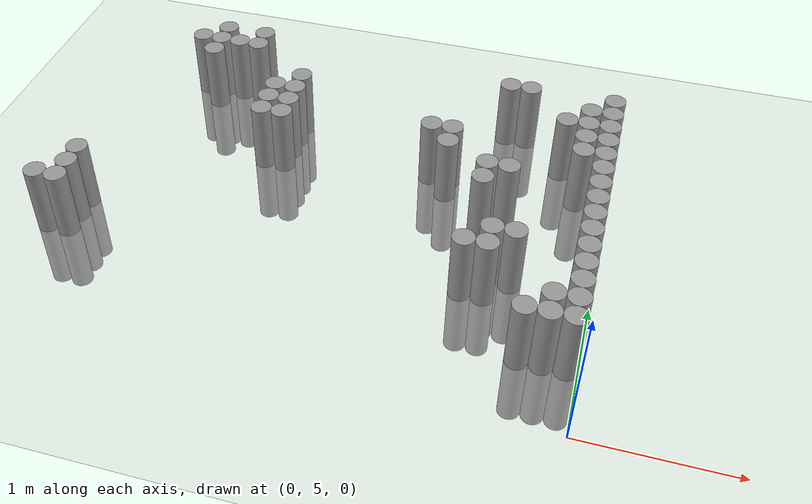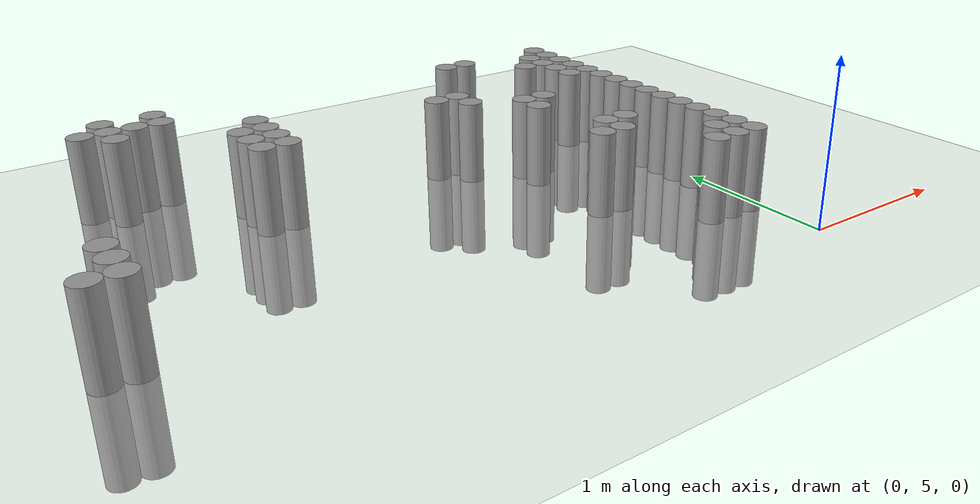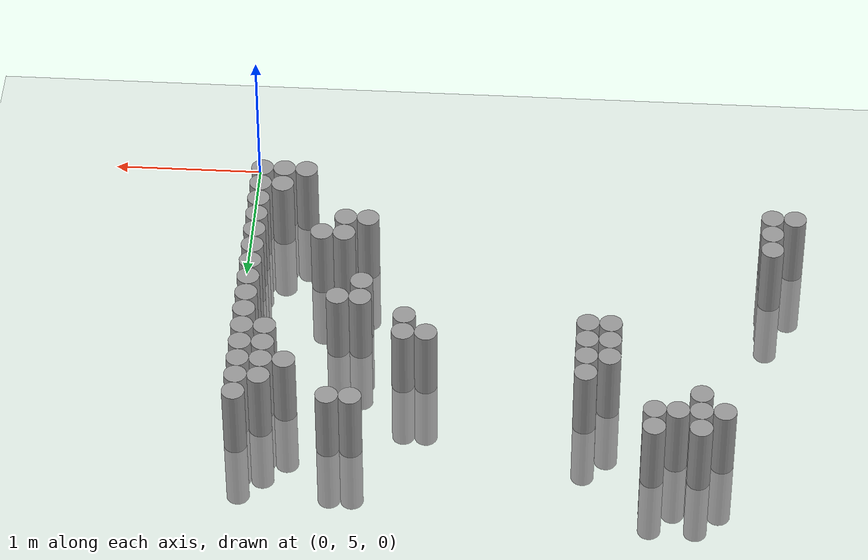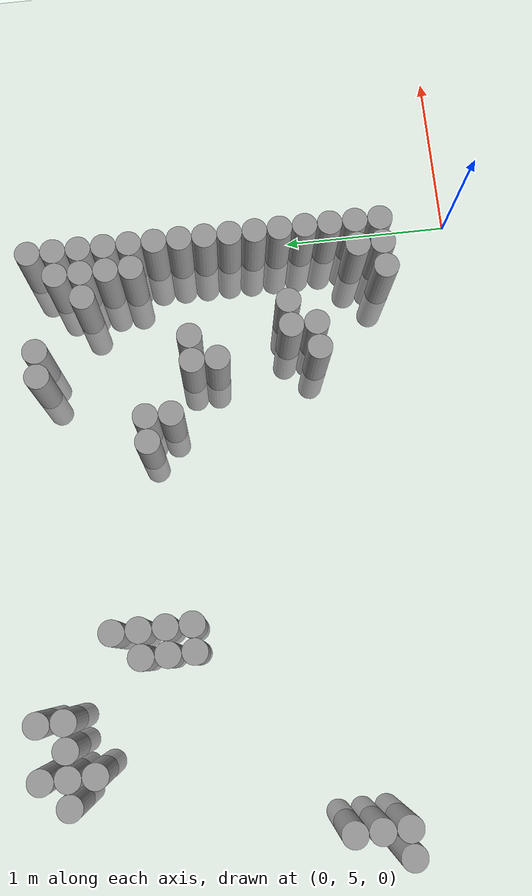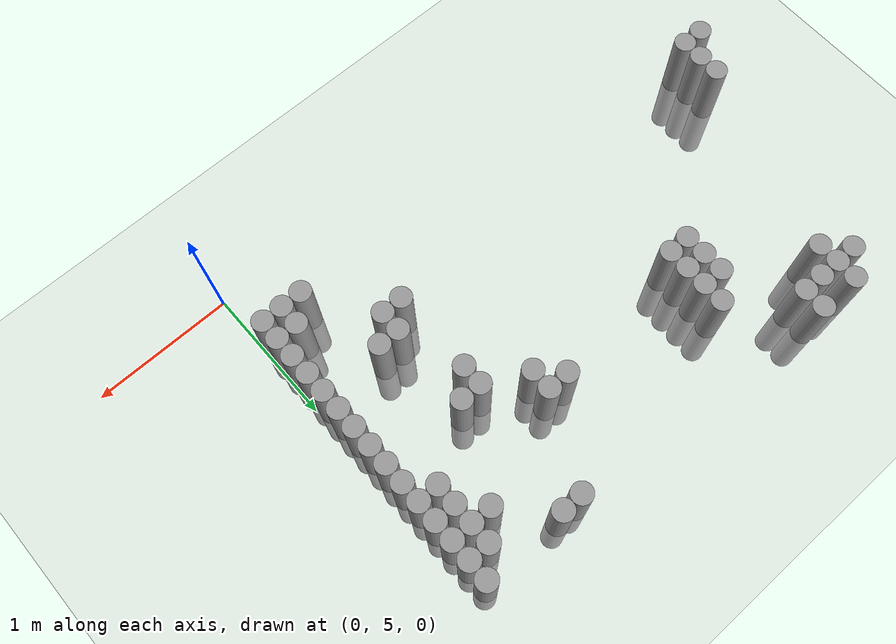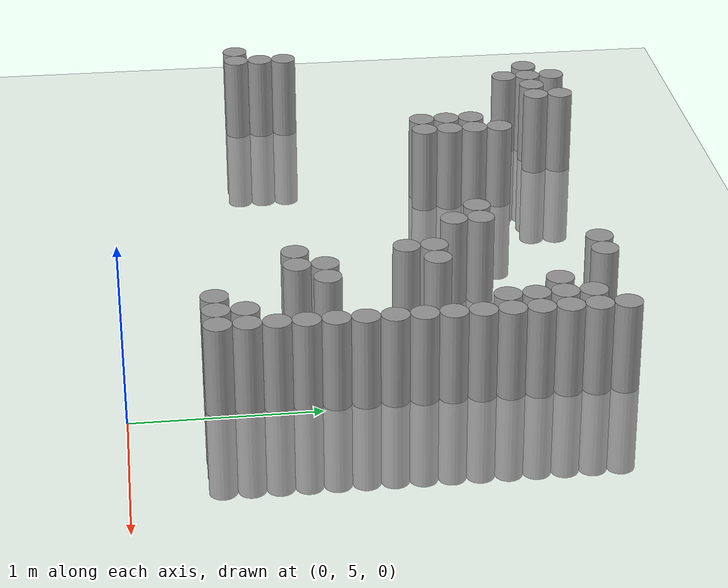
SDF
<sdf version="1.6">
 <world name="default">
  <model name="ground_plane">
   <static>1</static>
   <link name="link">
    <collision name="collision">
     <geometry><plane><normal>0 0 1</normal><size>100 100</size></plane></geometry>
     <surface><friction><ode><mu>100</mu><mu2>50</mu2></ode></friction></surface>
    </collision>
    <visual name="visual">
     <cast_shadows>0</cast_shadows>
     <geometry><plane><normal>0 0 1</normal><size>100 100</size></plane></geometry>
     <material>
      <script><uri>file://media/materials/scripts/gazebo.material</uri><name>Gazebo/Grey</name></script>
     </material>
    </visual>
   </link>
  </model>
  <model name="unit_cylinder_158">
   <pose>-3.675000 5.775000 0.000000 0.000000 0.000000 0.000000</pose>
   <link name="link">
    <inertial>
     <mass>1</mass>
     <inertia><ixx>0.145833</ixx><ixy>0</ixy><ixz>0</ixz><iyy>0.145833</iyy><iyz>0</iyz><izz>0.125</izz></inertia>
    </inertial>
    <collision name="collision">
     <geometry><cylinder><radius>0.075000</radius><length>1</length></cylinder></geometry>
    </collision>
    <visual name="visual">
     <geometry><cylinder><radius>0.075000</radius><length>1</length></cylinder></geometry>
     <material>
      <script><name>Gazebo/Grey</name><uri>file://media/materials/scripts/gazebo.material</uri></script>
     </material>
    </visual>
   </link>
  </model>
  <model name="unit_cylinder_163">
   <pose>-3.525000 5.775000 0.000000 0.000000 0.000000 0.000000</pose>
   <link name="link">
    <inertial>
     <mass>1</mass>
     <inertia><ixx>0.145833</ixx><ixy>0</ixy><ixz>0</ixz><iyy>0.145833</iyy><iyz>0</iyz><izz>0.125</izz></inertia>
    </inertial>
    <collision name="collision">
     <geometry><cylinder><radius>0.075000</radius><length>1</length></cylinder></geometry>
    </collision>
    <visual name="visual">
     <geometry><cylinder><radius>0.075000</radius><length>1</length></cylinder></geometry>
     <material>
      <script><name>Gazebo/Grey</name><uri>file://media/materials/scripts/gazebo.material</uri></script>
     </material>
    </visual>
   </link>
  </model>
  <model name="unit_cylinder_164">
   <pose>-3.525000 5.925000 0.000000 0.000000 0.000000 0.000000</pose>
   <link name="link">
    <inertial>
     <mass>1</mass>
     <inertia><ixx>0.145833</ixx><ixy>0</ixy><ixz>0</ixz><iyy>0.145833</iyy><iyz>0</iyz><izz>0.125</izz></inertia>
    </inertial>
    <collision name="collision">
     <geometry><cylinder><radius>0.075000</radius><length>1</length></cylinder></geometry>
    </collision>
    <visual name="visual">
     <geometry><cylinder><radius>0.075000</radius><length>1</length></cylinder></geometry>
     <material>
      <script><name>Gazebo/Grey</name><uri>file://media/materials/scripts/gazebo.material</uri></script>
     </material>
    </visual>
   </link>
  </model>
  <model name="unit_cylinder_165">
   <pose>-3.525000 6.075000 0.000000 0.000000 0.000000 0.000000</pose>
   <link name="link">
    <inertial>
     <mass>1</mass>
     <inertia><ixx>0.145833</ixx><ixy>0</ixy><ixz>0</ixz><iyy>0.145833</iyy><iyz>0</iyz><izz>0.125</izz></inertia>
    </inertial>
    <collision name="collision">
     <geometry><cylinder><radius>0.075000</radius><length>1</length></cylinder></geometry>
    </collision>
    <visual name="visual">
     <geometry><cylinder><radius>0.075000</radius><length>1</length></cylinder></geometry>
     <material>
      <script><name>Gazebo/Grey</name><uri>file://media/materials/scripts/gazebo.material</uri></script>
     </material>
    </visual>
   </link>
  </model>
  <model name="unit_cylinder_168">
   <pose>-3.225000 7.575000 0.000000 0.000000 0.000000 0.000000</pose>
   <link name="link">
    <inertial>
     <mass>1</mass>
     <inertia><ixx>0.145833</ixx><ixy>0</ixy><ixz>0</ixz><iyy>0.145833</iyy><iyz>0</iyz><izz>0.125</izz></inertia>
    </inertial>
    <collision name="collision">
     <geometry><cylinder><radius>0.075000</radius><length>1</length></cylinder></geometry>
    </collision>
    <visual name="visual">
     <geometry><cylinder><radius>0.075000</radius><length>1</length></cylinder></geometry>
     <material>
      <script><name>Gazebo/Grey</name><uri>file://media/materials/scripts/gazebo.material</uri></script>
     </material>
    </visual>
   </link>
  </model>
  <model name="unit_cylinder_171">
   <pose>-3.075000 7.425000 0.000000 0.000000 0.000000 0.000000</pose>
   <link name="link">
    <inertial>
     <mass>1</mass>
     <inertia><ixx>0.145833</ixx><ixy>0</ixy><ixz>0</ixz><iyy>0.145833</iyy><iyz>0</iyz><izz>0.125</izz></inertia>
    </inertial>
    <collision name="collision">
     <geometry><cylinder><radius>0.075000</radius><length>1</length></cylinder></geometry>
    </collision>
    <visual name="visual">
     <geometry><cylinder><radius>0.075000</radius><length>1</length></cylinder></geometry>
     <material>
      <script><name>Gazebo/Grey</name><uri>file://media/materials/scripts/gazebo.material</uri></script>
     </material>
    </visual>
   </link>
  </model>
  <model name="unit_cylinder_172">
   <pose>-3.075000 7.575000 0.000000 0.000000 0.000000 0.000000</pose>
   <link name="link">
    <inertial>
     <mass>1</mass>
     <inertia><ixx>0.145833</ixx><ixy>0</ixy><ixz>0</ixz><iyy>0.145833</iyy><iyz>0</iyz><izz>0.125</izz></inertia>
    </inertial>
    <collision name="collision">
     <geometry><cylinder><radius>0.075000</radius><length>1</length></cylinder></geometry>
    </collision>
    <visual name="visual">
     <geometry><cylinder><radius>0.075000</radius><length>1</length></cylinder></geometry>
     <material>
      <script><name>Gazebo/Grey</name><uri>file://media/materials/scripts/gazebo.material</uri></script>
     </material>
    </visual>
   </link>
  </model>
  <model name="unit_cylinder_173">
   <pose>-3.075000 7.725000 0.000000 0.000000 0.000000 0.000000</pose>
   <link name="link">
    <inertial>
     <mass>1</mass>
     <inertia><ixx>0.145833</ixx><ixy>0</ixy><ixz>0</ixz><iyy>0.145833</iyy><iyz>0</iyz><izz>0.125</izz></inertia>
    </inertial>
    <collision name="collision">
     <geometry><cylinder><radius>0.075000</radius><length>1</length></cylinder></geometry>
    </collision>
    <visual name="visual">
     <geometry><cylinder><radius>0.075000</radius><length>1</length></cylinder></geometry>
     <material>
      <script><name>Gazebo/Grey</name><uri>file://media/materials/scripts/gazebo.material</uri></script>
     </material>
    </visual>
   </link>
  </model>
  <model name="unit_cylinder_177">
   <pose>-2.925000 7.575000 0.000000 0.000000 0.000000 0.000000</pose>
   <link name="link">
    <inertial>
     <mass>1</mass>
     <inertia><ixx>0.145833</ixx><ixy>0</ixy><ixz>0</ixz><iyy>0.145833</iyy><iyz>0</iyz><izz>0.125</izz></inertia>
    </inertial>
    <collision name="collision">
     <geometry><cylinder><radius>0.075000</radius><length>1</length></cylinder></geometry>
    </collision>
    <visual name="visual">
     <geometry><cylinder><radius>0.075000</radius><length>1</length></cylinder></geometry>
     <material>
      <script><name>Gazebo/Grey</name><uri>file://media/materials/scripts/gazebo.material</uri></script>
     </material>
    </visual>
   </link>
  </model>
  <model name="unit_cylinder_182">
   <pose>-2.775000 7.575000 0.000000 0.000000 0.000000 0.000000</pose>
   <link name="link">
    <inertial>
     <mass>1</mass>
     <inertia><ixx>0.145833</ixx><ixy>0</ixy><ixz>0</ixz><iyy>0.145833</iyy><iyz>0</iyz><izz>0.125</izz></inertia>
    </inertial>
    <collision name="collision">
     <geometry><cylinder><radius>0.075000</radius><length>1</length></cylinder></geometry>
    </collision>
    <visual name="visual">
     <geometry><cylinder><radius>0.075000</radius><length>1</length></cylinder></geometry>
     <material>
      <script><name>Gazebo/Grey</name><uri>file://media/materials/scripts/gazebo.material</uri></script>
     </material>
    </visual>
   </link>
  </model>
  <model name="unit_cylinder_183">
   <pose>-2.775000 7.725000 0.000000 0.000000 0.000000 0.000000</pose>
   <link name="link">
    <inertial>
     <mass>1</mass>
     <inertia><ixx>0.145833</ixx><ixy>0</ixy><ixz>0</ixz><iyy>0.145833</iyy><iyz>0</iyz><izz>0.125</izz></inertia>
    </inertial>
    <collision name="collision">
     <geometry><cylinder><radius>0.075000</radius><length>1</length></cylinder></geometry>
    </collision>
    <visual name="visual">
     <geometry><cylinder><radius>0.075000</radius><length>1</length></cylinder></geometry>
     <material>
      <script><name>Gazebo/Grey</name><uri>file://media/materials/scripts/gazebo.material</uri></script>
     </material>
    </visual>
   </link>
  </model>
  <model name="unit_cylinder_187">
   <pose>-2.475000 6.825000 0.000000 0.000000 0.000000 0.000000</pose>
   <link name="link">
    <inertial>
     <mass>1</mass>
     <inertia><ixx>0.145833</ixx><ixy>0</ixy><ixz>0</ixz><iyy>0.145833</iyy><iyz>0</iyz><izz>0.125</izz></inertia>
    </inertial>
    <collision name="collision">
     <geometry><cylinder><radius>0.075000</radius><length>1</length></cylinder></geometry>
    </collision>
    <visual name="visual">
     <geometry><cylinder><radius>0.075000</radius><length>1</length></cylinder></geometry>
     <material>
      <script><name>Gazebo/Grey</name><uri>file://media/materials/scripts/gazebo.material</uri></script>
     </material>
    </visual>
   </link>
  </model>
  <model name="unit_cylinder_188">
   <pose>-2.475000 6.975000 0.000000 0.000000 0.000000 0.000000</pose>
   <link name="link">
    <inertial>
     <mass>1</mass>
     <inertia><ixx>0.145833</ixx><ixy>0</ixy><ixz>0</ixz><iyy>0.145833</iyy><iyz>0</iyz><izz>0.125</izz></inertia>
    </inertial>
    <collision name="collision">
     <geometry><cylinder><radius>0.075000</radius><length>1</length></cylinder></geometry>
    </collision>
    <visual name="visual">
     <geometry><cylinder><radius>0.075000</radius><length>1</length></cylinder></geometry>
     <material>
      <script><name>Gazebo/Grey</name><uri>file://media/materials/scripts/gazebo.material</uri></script>
     </material>
    </visual>
   </link>
  </model>
  <model name="unit_cylinder_189">
   <pose>-2.475000 7.125000 0.000000 0.000000 0.000000 0.000000</pose>
   <link name="link">
    <inertial>
     <mass>1</mass>
     <inertia><ixx>0.145833</ixx><ixy>0</ixy><ixz>0</ixz><iyy>0.145833</iyy><iyz>0</iyz><izz>0.125</izz></inertia>
    </inertial>
    <collision name="collision">
     <geometry><cylinder><radius>0.075000</radius><length>1</length></cylinder></geometry>
    </collision>
    <visual name="visual">
     <geometry><cylinder><radius>0.075000</radius><length>1</length></cylinder></geometry>
     <material>
      <script><name>Gazebo/Grey</name><uri>file://media/materials/scripts/gazebo.material</uri></script>
     </material>
    </visual>
   </link>
  </model>
  <model name="unit_cylinder_190">
   <pose>-2.325000 6.825000 0.000000 0.000000 0.000000 0.000000</pose>
   <link name="link">
    <inertial>
     <mass>1</mass>
     <inertia><ixx>0.145833</ixx><ixy>0</ixy><ixz>0</ixz><iyy>0.145833</iyy><iyz>0</iyz><izz>0.125</izz></inertia>
    </inertial>
    <collision name="collision">
     <geometry><cylinder><radius>0.075000</radius><length>1</length></cylinder></geometry>
    </collision>
    <visual name="visual">
     <geometry><cylinder><radius>0.075000</radius><length>1</length></cylinder></geometry>
     <material>
      <script><name>Gazebo/Grey</name><uri>file://media/materials/scripts/gazebo.material</uri></script>
     </material>
    </visual>
   </link>
  </model>
  <model name="unit_cylinder_191">
   <pose>-2.325000 6.975000 0.000000 0.000000 0.000000 0.000000</pose>
   <link name="link">
    <inertial>
     <mass>1</mass>
     <inertia><ixx>0.145833</ixx><ixy>0</ixy><ixz>0</ixz><iyy>0.145833</iyy><iyz>0</iyz><izz>0.125</izz></inertia>
    </inertial>
    <collision name="collision">
     <geometry><cylinder><radius>0.075000</radius><length>1</length></cylinder></geometry>
    </collision>
    <visual name="visual">
     <geometry><cylinder><radius>0.075000</radius><length>1</length></cylinder></geometry>
     <material>
      <script><name>Gazebo/Grey</name><uri>file://media/materials/scripts/gazebo.material</uri></script>
     </material>
    </visual>
   </link>
  </model>
  <model name="unit_cylinder_192">
   <pose>-2.325000 7.125000 0.000000 0.000000 0.000000 0.000000</pose>
   <link name="link">
    <inertial>
     <mass>1</mass>
     <inertia><ixx>0.145833</ixx><ixy>0</ixy><ixz>0</ixz><iyy>0.145833</iyy><iyz>0</iyz><izz>0.125</izz></inertia>
    </inertial>
    <collision name="collision">
     <geometry><cylinder><radius>0.075000</radius><length>1</length></cylinder></geometry>
    </collision>
    <visual name="visual">
     <geometry><cylinder><radius>0.075000</radius><length>1</length></cylinder></geometry>
     <material>
      <script><name>Gazebo/Grey</name><uri>file://media/materials/scripts/gazebo.material</uri></script>
     </material>
    </visual>
   </link>
  </model>
  <model name="unit_cylinder_193">
   <pose>-2.325000 7.275000 0.000000 0.000000 0.000000 0.000000</pose>
   <link name="link">
    <inertial>
     <mass>1</mass>
     <inertia><ixx>0.145833</ixx><ixy>0</ixy><ixz>0</ixz><iyy>0.145833</iyy><iyz>0</iyz><izz>0.125</izz></inertia>
    </inertial>
    <collision name="collision">
     <geometry><cylinder><radius>0.075000</radius><length>1</length></cylinder></geometry>
    </collision>
    <visual name="visual">
     <geometry><cylinder><radius>0.075000</radius><length>1</length></cylinder></geometry>
     <material>
      <script><name>Gazebo/Grey</name><uri>file://media/materials/scripts/gazebo.material</uri></script>
     </material>
    </visual>
   </link>
  </model>
  <model name="unit_cylinder_203">
   <pose>-1.275000 6.975000 0.000000 0.000000 0.000000 0.000000</pose>
   <link name="link">
    <inertial>
     <mass>1</mass>
     <inertia><ixx>0.145833</ixx><ixy>0</ixy><ixz>0</ixz><iyy>0.145833</iyy><iyz>0</iyz><izz>0.125</izz></inertia>
    </inertial>
    <collision name="collision">
     <geometry><cylinder><radius>0.075000</radius><length>1</length></cylinder></geometry>
    </collision>
    <visual name="visual">
     <geometry><cylinder><radius>0.075000</radius><length>1</length></cylinder></geometry>
     <material>
      <script><name>Gazebo/Grey</name><uri>file://media/materials/scripts/gazebo.material</uri></script>
     </material>
    </visual>
   </link>
  </model>
  <model name="unit_cylinder_204">
   <pose>-1.125000 6.825000 0.000000 0.000000 0.000000 0.000000</pose>
   <link name="link">
    <inertial>
     <mass>1</mass>
     <inertia><ixx>0.145833</ixx><ixy>0</ixy><ixz>0</ixz><iyy>0.145833</iyy><iyz>0</iyz><izz>0.125</izz></inertia>
    </inertial>
    <collision name="collision">
     <geometry><cylinder><radius>0.075000</radius><length>1</length></cylinder></geometry>
    </collision>
    <visual name="visual">
     <geometry><cylinder><radius>0.075000</radius><length>1</length></cylinder></geometry>
     <material>
      <script><name>Gazebo/Grey</name><uri>file://media/materials/scripts/gazebo.material</uri></script>
     </material>
    </visual>
   </link>
  </model>
  <model name="unit_cylinder_205">
   <pose>-1.125000 6.975000 0.000000 0.000000 0.000000 0.000000</pose>
   <link name="link">
    <inertial>
     <mass>1</mass>
     <inertia><ixx>0.145833</ixx><ixy>0</ixy><ixz>0</ixz><iyy>0.145833</iyy><iyz>0</iyz><izz>0.125</izz></inertia>
    </inertial>
    <collision name="collision">
     <geometry><cylinder><radius>0.075000</radius><length>1</length></cylinder></geometry>
    </collision>
    <visual name="visual">
     <geometry><cylinder><radius>0.075000</radius><length>1</length></cylinder></geometry>
     <material>
      <script><name>Gazebo/Grey</name><uri>file://media/materials/scripts/gazebo.material</uri></script>
     </material>
    </visual>
   </link>
  </model>
  <model name="unit_cylinder_206">
   <pose>-0.825000 5.925000 0.000000 0.000000 0.000000 0.000000</pose>
   <link name="link">
    <inertial>
     <mass>1</mass>
     <inertia><ixx>0.145833</ixx><ixy>0</ixy><ixz>0</ixz><iyy>0.145833</iyy><iyz>0</iyz><izz>0.125</izz></inertia>
    </inertial>
    <collision name="collision">
     <geometry><cylinder><radius>0.075000</radius><length>1</length></cylinder></geometry>
    </collision>
    <visual name="visual">
     <geometry><cylinder><radius>0.075000</radius><length>1</length></cylinder></geometry>
     <material>
      <script><name>Gazebo/Grey</name><uri>file://media/materials/scripts/gazebo.material</uri></script>
     </material>
    </visual>
   </link>
  </model>
  <model name="unit_cylinder_207">
   <pose>-0.825000 6.525000 0.000000 0.000000 0.000000 0.000000</pose>
   <link name="link">
    <inertial>
     <mass>1</mass>
     <inertia><ixx>0.145833</ixx><ixy>0</ixy><ixz>0</ixz><iyy>0.145833</iyy><iyz>0</iyz><izz>0.125</izz></inertia>
    </inertial>
    <collision name="collision">
     <geometry><cylinder><radius>0.075000</radius><length>1</length></cylinder></geometry>
    </collision>
    <visual name="visual">
     <geometry><cylinder><radius>0.075000</radius><length>1</length></cylinder></geometry>
     <material>
      <script><name>Gazebo/Grey</name><uri>file://media/materials/scripts/gazebo.material</uri></script>
     </material>
    </visual>
   </link>
  </model>
  <model name="unit_cylinder_208">
   <pose>-0.825000 6.675000 0.000000 0.000000 0.000000 0.000000</pose>
   <link name="link">
    <inertial>
     <mass>1</mass>
     <inertia><ixx>0.145833</ixx><ixy>0</ixy><ixz>0</ixz><iyy>0.145833</iyy><iyz>0</iyz><izz>0.125</izz></inertia>
    </inertial>
    <collision name="collision">
     <geometry><cylinder><radius>0.075000</radius><length>1</length></cylinder></geometry>
    </collision>
    <visual name="visual">
     <geometry><cylinder><radius>0.075000</radius><length>1</length></cylinder></geometry>
     <material>
      <script><name>Gazebo/Grey</name><uri>file://media/materials/scripts/gazebo.material</uri></script>
     </material>
    </visual>
   </link>
  </model>
  <model name="unit_cylinder_209">
   <pose>-0.825000 7.575000 0.000000 0.000000 0.000000 0.000000</pose>
   <link name="link">
    <inertial>
     <mass>1</mass>
     <inertia><ixx>0.145833</ixx><ixy>0</ixy><ixz>0</ixz><iyy>0.145833</iyy><iyz>0</iyz><izz>0.125</izz></inertia>
    </inertial>
    <collision name="collision">
     <geometry><cylinder><radius>0.075000</radius><length>1</length></cylinder></geometry>
    </collision>
    <visual name="visual">
     <geometry><cylinder><radius>0.075000</radius><length>1</length></cylinder></geometry>
     <material>
      <script><name>Gazebo/Grey</name><uri>file://media/materials/scripts/gazebo.material</uri></script>
     </material>
    </visual>
   </link>
  </model>
  <model name="unit_cylinder_210">
   <pose>-0.675000 5.925000 0.000000 0.000000 0.000000 0.000000</pose>
   <link name="link">
    <inertial>
     <mass>1</mass>
     <inertia><ixx>0.145833</ixx><ixy>0</ixy><ixz>0</ixz><iyy>0.145833</iyy><iyz>0</iyz><izz>0.125</izz></inertia>
    </inertial>
    <collision name="collision">
     <geometry><cylinder><radius>0.075000</radius><length>1</length></cylinder></geometry>
    </collision>
    <visual name="visual">
     <geometry><cylinder><radius>0.075000</radius><length>1</length></cylinder></geometry>
     <material>
      <script><name>Gazebo/Grey</name><uri>file://media/materials/scripts/gazebo.material</uri></script>
     </material>
    </visual>
   </link>
  </model>
  <model name="unit_cylinder_211">
   <pose>-0.675000 6.075000 0.000000 0.000000 0.000000 0.000000</pose>
   <link name="link">
    <inertial>
     <mass>1</mass>
     <inertia><ixx>0.145833</ixx><ixy>0</ixy><ixz>0</ixz><iyy>0.145833</iyy><iyz>0</iyz><izz>0.125</izz></inertia>
    </inertial>
    <collision name="collision">
     <geometry><cylinder><radius>0.075000</radius><length>1</length></cylinder></geometry>
    </collision>
    <visual name="visual">
     <geometry><cylinder><radius>0.075000</radius><length>1</length></cylinder></geometry>
     <material>
      <script><name>Gazebo/Grey</name><uri>file://media/materials/scripts/gazebo.material</uri></script>
     </material>
    </visual>
   </link>
  </model>
  <model name="unit_cylinder_212">
   <pose>-0.675000 6.675000 0.000000 0.000000 0.000000 0.000000</pose>
   <link name="link">
    <inertial>
     <mass>1</mass>
     <inertia><ixx>0.145833</ixx><ixy>0</ixy><ixz>0</ixz><iyy>0.145833</iyy><iyz>0</iyz><izz>0.125</izz></inertia>
    </inertial>
    <collision name="collision">
     <geometry><cylinder><radius>0.075000</radius><length>1</length></cylinder></geometry>
    </collision>
    <visual name="visual">
     <geometry><cylinder><radius>0.075000</radius><length>1</length></cylinder></geometry>
     <material>
      <script><name>Gazebo/Grey</name><uri>file://media/materials/scripts/gazebo.material</uri></script>
     </material>
    </visual>
   </link>
  </model>
  <model name="unit_cylinder_213">
   <pose>-0.675000 7.575000 0.000000 0.000000 0.000000 0.000000</pose>
   <link name="link">
    <inertial>
     <mass>1</mass>
     <inertia><ixx>0.145833</ixx><ixy>0</ixy><ixz>0</ixz><iyy>0.145833</iyy><iyz>0</iyz><izz>0.125</izz></inertia>
    </inertial>
    <collision name="collision">
     <geometry><cylinder><radius>0.075000</radius><length>1</length></cylinder></geometry>
    </collision>
    <visual name="visual">
     <geometry><cylinder><radius>0.075000</radius><length>1</length></cylinder></geometry>
     <material>
      <script><name>Gazebo/Grey</name><uri>file://media/materials/scripts/gazebo.material</uri></script>
     </material>
    </visual>
   </link>
  </model>
  <model name="unit_cylinder_215">
   <pose>-0.525000 6.075000 0.000000 0.000000 0.000000 0.000000</pose>
   <link name="link">
    <inertial>
     <mass>1</mass>
     <inertia><ixx>0.145833</ixx><ixy>0</ixy><ixz>0</ixz><iyy>0.145833</iyy><iyz>0</iyz><izz>0.125</izz></inertia>
    </inertial>
    <collision name="collision">
     <geometry><cylinder><radius>0.075000</radius><length>1</length></cylinder></geometry>
    </collision>
    <visual name="visual">
     <geometry><cylinder><radius>0.075000</radius><length>1</length></cylinder></geometry>
     <material>
      <script><name>Gazebo/Grey</name><uri>file://media/materials/scripts/gazebo.material</uri></script>
     </material>
    </visual>
   </link>
  </model>
  <model name="unit_cylinder_219">
   <pose>-0.375000 5.475000 0.000000 0.000000 0.000000 0.000000</pose>
   <link name="link">
    <inertial>
     <mass>1</mass>
     <inertia><ixx>0.145833</ixx><ixy>0</ixy><ixz>0</ixz><iyy>0.145833</iyy><iyz>0</iyz><izz>0.125</izz></inertia>
    </inertial>
    <collision name="collision">
     <geometry><cylinder><radius>0.075000</radius><length>1</length></cylinder></geometry>
    </collision>
    <visual name="visual">
     <geometry><cylinder><radius>0.075000</radius><length>1</length></cylinder></geometry>
     <material>
      <script><name>Gazebo/Grey</name><uri>file://media/materials/scripts/gazebo.material</uri></script>
     </material>
    </visual>
   </link>
  </model>
  <model name="unit_cylinder_220">
   <pose>-0.375000 7.275000 0.000000 0.000000 0.000000 0.000000</pose>
   <link name="link">
    <inertial>
     <mass>1</mass>
     <inertia><ixx>0.145833</ixx><ixy>0</ixy><ixz>0</ixz><iyy>0.145833</iyy><iyz>0</iyz><izz>0.125</izz></inertia>
    </inertial>
    <collision name="collision">
     <geometry><cylinder><radius>0.075000</radius><length>1</length></cylinder></geometry>
    </collision>
    <visual name="visual">
     <geometry><cylinder><radius>0.075000</radius><length>1</length></cylinder></geometry>
     <material>
      <script><name>Gazebo/Grey</name><uri>file://media/materials/scripts/gazebo.material</uri></script>
     </material>
    </visual>
   </link>
  </model>
  <model name="unit_cylinder_225">
   <pose>-0.225000 5.475000 0.000000 0.000000 0.000000 0.000000</pose>
   <link name="link">
    <inertial>
     <mass>1</mass>
     <inertia><ixx>0.145833</ixx><ixy>0</ixy><ixz>0</ixz><iyy>0.145833</iyy><iyz>0</iyz><izz>0.125</izz></inertia>
    </inertial>
    <collision name="collision">
     <geometry><cylinder><radius>0.075000</radius><length>1</length></cylinder></geometry>
    </collision>
    <visual name="visual">
     <geometry><cylinder><radius>0.075000</radius><length>1</length></cylinder></geometry>
     <material>
      <script><name>Gazebo/Grey</name><uri>file://media/materials/scripts/gazebo.material</uri></script>
     </material>
    </visual>
   </link>
  </model>
  <model name="unit_cylinder_226">
   <pose>-0.225000 5.625000 0.000000 0.000000 0.000000 0.000000</pose>
   <link name="link">
    <inertial>
     <mass>1</mass>
     <inertia><ixx>0.145833</ixx><ixy>0</ixy><ixz>0</ixz><iyy>0.145833</iyy><iyz>0</iyz><izz>0.125</izz></inertia>
    </inertial>
    <collision name="collision">
     <geometry><cylinder><radius>0.075000</radius><length>1</length></cylinder></geometry>
    </collision>
    <visual name="visual">
     <geometry><cylinder><radius>0.075000</radius><length>1</length></cylinder></geometry>
     <material>
      <script><name>Gazebo/Grey</name><uri>file://media/materials/scripts/gazebo.material</uri></script>
     </material>
    </visual>
   </link>
  </model>
  <model name="unit_cylinder_227">
   <pose>-0.225000 6.975000 0.000000 0.000000 0.000000 0.000000</pose>
   <link name="link">
    <inertial>
     <mass>1</mass>
     <inertia><ixx>0.145833</ixx><ixy>0</ixy><ixz>0</ixz><iyy>0.145833</iyy><iyz>0</iyz><izz>0.125</izz></inertia>
    </inertial>
    <collision name="collision">
     <geometry><cylinder><radius>0.075000</radius><length>1</length></cylinder></geometry>
    </collision>
    <visual name="visual">
     <geometry><cylinder><radius>0.075000</radius><length>1</length></cylinder></geometry>
     <material>
      <script><name>Gazebo/Grey</name><uri>file://media/materials/scripts/gazebo.material</uri></script>
     </material>
    </visual>
   </link>
  </model>
  <model name="unit_cylinder_228">
   <pose>-0.225000 7.125000 0.000000 0.000000 0.000000 0.000000</pose>
   <link name="link">
    <inertial>
     <mass>1</mass>
     <inertia><ixx>0.145833</ixx><ixy>0</ixy><ixz>0</ixz><iyy>0.145833</iyy><iyz>0</iyz><izz>0.125</izz></inertia>
    </inertial>
    <collision name="collision">
     <geometry><cylinder><radius>0.075000</radius><length>1</length></cylinder></geometry>
    </collision>
    <visual name="visual">
     <geometry><cylinder><radius>0.075000</radius><length>1</length></cylinder></geometry>
     <material>
      <script><name>Gazebo/Grey</name><uri>file://media/materials/scripts/gazebo.material</uri></script>
     </material>
    </visual>
   </link>
  </model>
  <model name="unit_cylinder_229">
   <pose>-0.225000 7.275000 0.000000 0.000000 0.000000 0.000000</pose>
   <link name="link">
    <inertial>
     <mass>1</mass>
     <inertia><ixx>0.145833</ixx><ixy>0</ixy><ixz>0</ixz><iyy>0.145833</iyy><iyz>0</iyz><izz>0.125</izz></inertia>
    </inertial>
    <collision name="collision">
     <geometry><cylinder><radius>0.075000</radius><length>1</length></cylinder></geometry>
    </collision>
    <visual name="visual">
     <geometry><cylinder><radius>0.075000</radius><length>1</length></cylinder></geometry>
     <material>
      <script><name>Gazebo/Grey</name><uri>file://media/materials/scripts/gazebo.material</uri></script>
     </material>
    </visual>
   </link>
  </model>
  <model name="unit_cylinder_230">
   <pose>-0.225000 7.425000 0.000000 0.000000 0.000000 0.000000</pose>
   <link name="link">
    <inertial>
     <mass>1</mass>
     <inertia><ixx>0.145833</ixx><ixy>0</ixy><ixz>0</ixz><iyy>0.145833</iyy><iyz>0</iyz><izz>0.125</izz></inertia>
    </inertial>
    <collision name="collision">
     <geometry><cylinder><radius>0.075000</radius><length>1</length></cylinder></geometry>
    </collision>
    <visual name="visual">
     <geometry><cylinder><radius>0.075000</radius><length>1</length></cylinder></geometry>
     <material>
      <script><name>Gazebo/Grey</name><uri>file://media/materials/scripts/gazebo.material</uri></script>
     </material>
    </visual>
   </link>
  </model>
  <model name="unit_cylinder_240">
   <pose>-0.075000 5.475000 0.000000 0.000000 0.000000 0.000000</pose>
   <link name="link">
    <inertial>
     <mass>1</mass>
     <inertia><ixx>0.145833</ixx><ixy>0</ixy><ixz>0</ixz><iyy>0.145833</iyy><iyz>0</iyz><izz>0.125</izz></inertia>
    </inertial>
    <collision name="collision">
     <geometry><cylinder><radius>0.075000</radius><length>1</length></cylinder></geometry>
    </collision>
    <visual name="visual">
     <geometry><cylinder><radius>0.075000</radius><length>1</length></cylinder></geometry>
     <material>
      <script><name>Gazebo/Grey</name><uri>file://media/materials/scripts/gazebo.material</uri></script>
     </material>
    </visual>
   </link>
  </model>
  <model name="unit_cylinder_241">
   <pose>-0.075000 5.625000 0.000000 0.000000 0.000000 0.000000</pose>
   <link name="link">
    <inertial>
     <mass>1</mass>
     <inertia><ixx>0.145833</ixx><ixy>0</ixy><ixz>0</ixz><iyy>0.145833</iyy><iyz>0</iyz><izz>0.125</izz></inertia>
    </inertial>
    <collision name="collision">
     <geometry><cylinder><radius>0.075000</radius><length>1</length></cylinder></geometry>
    </collision>
    <visual name="visual">
     <geometry><cylinder><radius>0.075000</radius><length>1</length></cylinder></geometry>
     <material>
      <script><name>Gazebo/Grey</name><uri>file://media/materials/scripts/gazebo.material</uri></script>
     </material>
    </visual>
   </link>
  </model>
  <model name="unit_cylinder_242">
   <pose>-0.075000 5.775000 0.000000 0.000000 0.000000 0.000000</pose>
   <link name="link">
    <inertial>
     <mass>1</mass>
     <inertia><ixx>0.145833</ixx><ixy>0</ixy><ixz>0</ixz><iyy>0.145833</iyy><iyz>0</iyz><izz>0.125</izz></inertia>
    </inertial>
    <collision name="collision">
     <geometry><cylinder><radius>0.075000</radius><length>1</length></cylinder></geometry>
    </collision>
    <visual name="visual">
     <geometry><cylinder><radius>0.075000</radius><length>1</length></cylinder></geometry>
     <material>
      <script><name>Gazebo/Grey</name><uri>file://media/materials/scripts/gazebo.material</uri></script>
     </material>
    </visual>
   </link>
  </model>
  <model name="unit_cylinder_243">
   <pose>-0.075000 5.925000 0.000000 0.000000 0.000000 0.000000</pose>
   <link name="link">
    <inertial>
     <mass>1</mass>
     <inertia><ixx>0.145833</ixx><ixy>0</ixy><ixz>0</ixz><iyy>0.145833</iyy><iyz>0</iyz><izz>0.125</izz></inertia>
    </inertial>
    <collision name="collision">
     <geometry><cylinder><radius>0.075000</radius><length>1</length></cylinder></geometry>
    </collision>
    <visual name="visual">
     <geometry><cylinder><radius>0.075000</radius><length>1</length></cylinder></geometry>
     <material>
      <script><name>Gazebo/Grey</name><uri>file://media/materials/scripts/gazebo.material</uri></script>
     </material>
    </visual>
   </link>
  </model>
  <model name="unit_cylinder_244">
   <pose>-0.075000 6.075000 0.000000 0.000000 0.000000 0.000000</pose>
   <link name="link">
    <inertial>
     <mass>1</mass>
     <inertia><ixx>0.145833</ixx><ixy>0</ixy><ixz>0</ixz><iyy>0.145833</iyy><iyz>0</iyz><izz>0.125</izz></inertia>
    </inertial>
    <collision name="collision">
     <geometry><cylinder><radius>0.075000</radius><length>1</length></cylinder></geometry>
    </collision>
    <visual name="visual">
     <geometry><cylinder><radius>0.075000</radius><length>1</length></cylinder></geometry>
     <material>
      <script><name>Gazebo/Grey</name><uri>file://media/materials/scripts/gazebo.material</uri></script>
     </material>
    </visual>
   </link>
  </model>
  <model name="unit_cylinder_245">
   <pose>-0.075000 6.225000 0.000000 0.000000 0.000000 0.000000</pose>
   <link name="link">
    <inertial>
     <mass>1</mass>
     <inertia><ixx>0.145833</ixx><ixy>0</ixy><ixz>0</ixz><iyy>0.145833</iyy><iyz>0</iyz><izz>0.125</izz></inertia>
    </inertial>
    <collision name="collision">
     <geometry><cylinder><radius>0.075000</radius><length>1</length></cylinder></geometry>
    </collision>
    <visual name="visual">
     <geometry><cylinder><radius>0.075000</radius><length>1</length></cylinder></geometry>
     <material>
      <script><name>Gazebo/Grey</name><uri>file://media/materials/scripts/gazebo.material</uri></script>
     </material>
    </visual>
   </link>
  </model>
  <model name="unit_cylinder_246">
   <pose>-0.075000 6.375000 0.000000 0.000000 0.000000 0.000000</pose>
   <link name="link">
    <inertial>
     <mass>1</mass>
     <inertia><ixx>0.145833</ixx><ixy>0</ixy><ixz>0</ixz><iyy>0.145833</iyy><iyz>0</iyz><izz>0.125</izz></inertia>
    </inertial>
    <collision name="collision">
     <geometry><cylinder><radius>0.075000</radius><length>1</length></cylinder></geometry>
    </collision>
    <visual name="visual">
     <geometry><cylinder><radius>0.075000</radius><length>1</length></cylinder></geometry>
     <material>
      <script><name>Gazebo/Grey</name><uri>file://media/materials/scripts/gazebo.material</uri></script>
     </material>
    </visual>
   </link>
  </model>
  <model name="unit_cylinder_247">
   <pose>-0.075000 6.525000 0.000000 0.000000 0.000000 0.000000</pose>
   <link name="link">
    <inertial>
     <mass>1</mass>
     <inertia><ixx>0.145833</ixx><ixy>0</ixy><ixz>0</ixz><iyy>0.145833</iyy><iyz>0</iyz><izz>0.125</izz></inertia>
    </inertial>
    <collision name="collision">
     <geometry><cylinder><radius>0.075000</radius><length>1</length></cylinder></geometry>
    </collision>
    <visual name="visual">
     <geometry><cylinder><radius>0.075000</radius><length>1</length></cylinder></geometry>
     <material>
      <script><name>Gazebo/Grey</name><uri>file://media/materials/scripts/gazebo.material</uri></script>
     </material>
    </visual>
   </link>
  </model>
  <model name="unit_cylinder_248">
   <pose>-0.075000 6.675000 0.000000 0.000000 0.000000 0.000000</pose>
   <link name="link">
    <inertial>
     <mass>1</mass>
     <inertia><ixx>0.145833</ixx><ixy>0</ixy><ixz>0</ixz><iyy>0.145833</iyy><iyz>0</iyz><izz>0.125</izz></inertia>
    </inertial>
    <collision name="collision">
     <geometry><cylinder><radius>0.075000</radius><length>1</length></cylinder></geometry>
    </collision>
    <visual name="visual">
     <geometry><cylinder><radius>0.075000</radius><length>1</length></cylinder></geometry>
     <material>
      <script><name>Gazebo/Grey</name><uri>file://media/materials/scripts/gazebo.material</uri></script>
     </material>
    </visual>
   </link>
  </model>
  <model name="unit_cylinder_249">
   <pose>-0.075000 6.825000 0.000000 0.000000 0.000000 0.000000</pose>
   <link name="link">
    <inertial>
     <mass>1</mass>
     <inertia><ixx>0.145833</ixx><ixy>0</ixy><ixz>0</ixz><iyy>0.145833</iyy><iyz>0</iyz><izz>0.125</izz></inertia>
    </inertial>
    <collision name="collision">
     <geometry><cylinder><radius>0.075000</radius><length>1</length></cylinder></geometry>
    </collision>
    <visual name="visual">
     <geometry><cylinder><radius>0.075000</radius><length>1</length></cylinder></geometry>
     <material>
      <script><name>Gazebo/Grey</name><uri>file://media/materials/scripts/gazebo.material</uri></script>
     </material>
    </visual>
   </link>
  </model>
  <model name="unit_cylinder_250">
   <pose>-0.075000 6.975000 0.000000 0.000000 0.000000 0.000000</pose>
   <link name="link">
    <inertial>
     <mass>1</mass>
     <inertia><ixx>0.145833</ixx><ixy>0</ixy><ixz>0</ixz><iyy>0.145833</iyy><iyz>0</iyz><izz>0.125</izz></inertia>
    </inertial>
    <collision name="collision">
     <geometry><cylinder><radius>0.075000</radius><length>1</length></cylinder></geometry>
    </collision>
    <visual name="visual">
     <geometry><cylinder><radius>0.075000</radius><length>1</length></cylinder></geometry>
     <material>
      <script><name>Gazebo/Grey</name><uri>file://media/materials/scripts/gazebo.material</uri></script>
     </material>
    </visual>
   </link>
  </model>
  <model name="unit_cylinder_251">
   <pose>-0.075000 7.125000 0.000000 0.000000 0.000000 0.000000</pose>
   <link name="link">
    <inertial>
     <mass>1</mass>
     <inertia><ixx>0.145833</ixx><ixy>0</ixy><ixz>0</ixz><iyy>0.145833</iyy><iyz>0</iyz><izz>0.125</izz></inertia>
    </inertial>
    <collision name="collision">
     <geometry><cylinder><radius>0.075000</radius><length>1</length></cylinder></geometry>
    </collision>
    <visual name="visual">
     <geometry><cylinder><radius>0.075000</radius><length>1</length></cylinder></geometry>
     <material>
      <script><name>Gazebo/Grey</name><uri>file://media/materials/scripts/gazebo.material</uri></script>
     </material>
    </visual>
   </link>
  </model>
  <model name="unit_cylinder_252">
   <pose>-0.075000 7.275000 0.000000 0.000000 0.000000 0.000000</pose>
   <link name="link">
    <inertial>
     <mass>1</mass>
     <inertia><ixx>0.145833</ixx><ixy>0</ixy><ixz>0</ixz><iyy>0.145833</iyy><iyz>0</iyz><izz>0.125</izz></inertia>
    </inertial>
    <collision name="collision">
     <geometry><cylinder><radius>0.075000</radius><length>1</length></cylinder></geometry>
    </collision>
    <visual name="visual">
     <geometry><cylinder><radius>0.075000</radius><length>1</length></cylinder></geometry>
     <material>
      <script><name>Gazebo/Grey</name><uri>file://media/materials/scripts/gazebo.material</uri></script>
     </material>
    </visual>
   </link>
  </model>
  <model name="unit_cylinder_253">
   <pose>-0.075000 7.425000 0.000000 0.000000 0.000000 0.000000</pose>
   <link name="link">
    <inertial>
     <mass>1</mass>
     <inertia><ixx>0.145833</ixx><ixy>0</ixy><ixz>0</ixz><iyy>0.145833</iyy><iyz>0</iyz><izz>0.125</izz></inertia>
    </inertial>
    <collision name="collision">
     <geometry><cylinder><radius>0.075000</radius><length>1</length></cylinder></geometry>
    </collision>
    <visual name="visual">
     <geometry><cylinder><radius>0.075000</radius><length>1</length></cylinder></geometry>
     <material>
      <script><name>Gazebo/Grey</name><uri>file://media/materials/scripts/gazebo.material</uri></script>
     </material>
    </visual>
   </link>
  </model>
  <model name="unit_cylinder_254">
   <pose>-0.075000 7.575000 0.000000 0.000000 0.000000 0.000000</pose>
   <link name="link">
    <inertial>
     <mass>1</mass>
     <inertia><ixx>0.145833</ixx><ixy>0</ixy><ixz>0</ixz><iyy>0.145833</iyy><iyz>0</iyz><izz>0.125</izz></inertia>
    </inertial>
    <collision name="collision">
     <geometry><cylinder><radius>0.075000</radius><length>1</length></cylinder></geometry>
    </collision>
    <visual name="visual">
     <geometry><cylinder><radius>0.075000</radius><length>1</length></cylinder></geometry>
     <material>
      <script><name>Gazebo/Grey</name><uri>file://media/materials/scripts/gazebo.material</uri></script>
     </material>
    </visual>
   </link>
  </model>
 </world>
</sdf>
